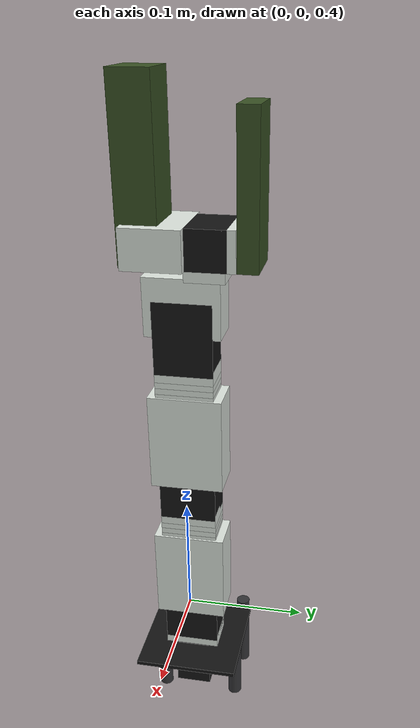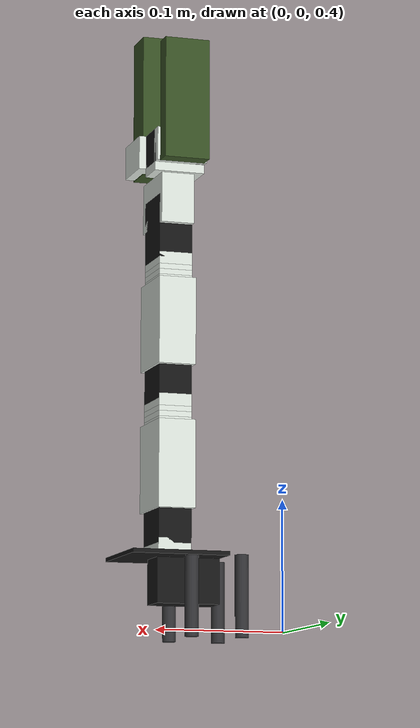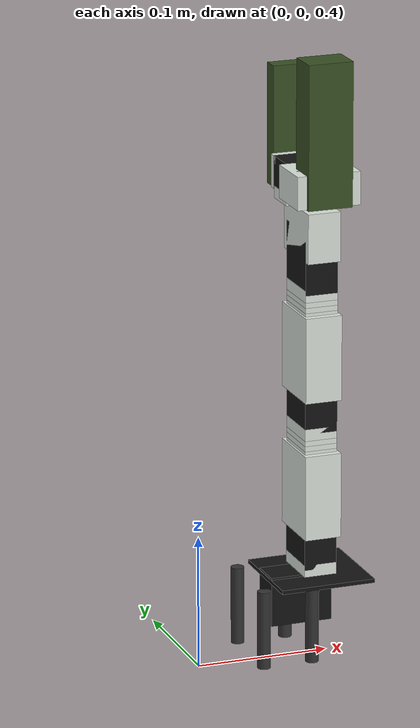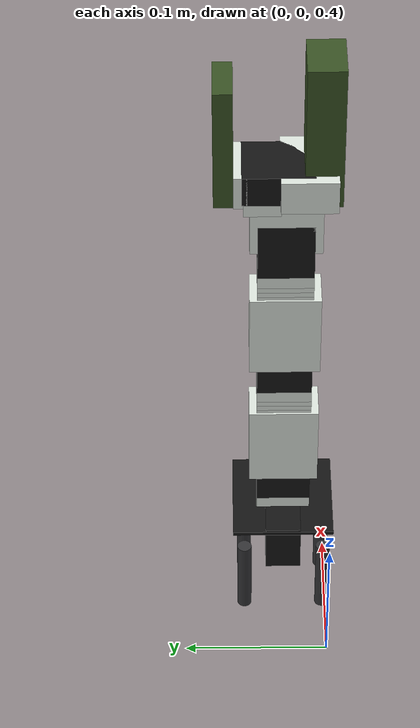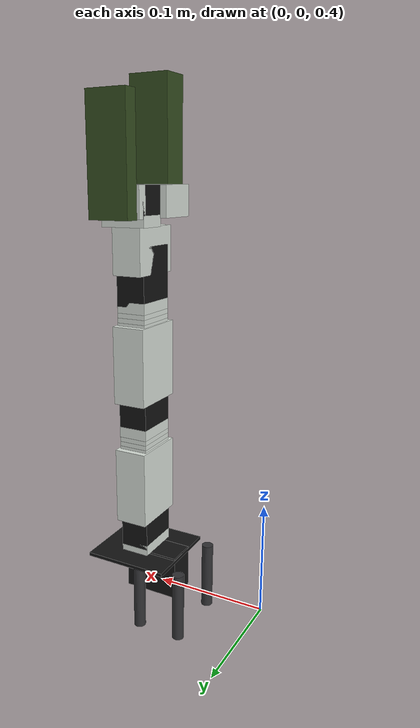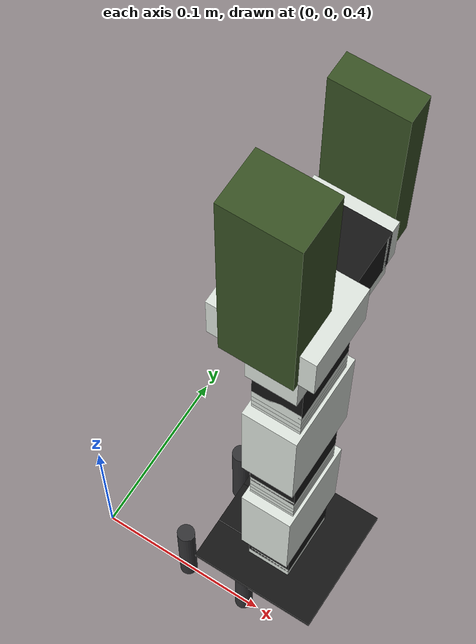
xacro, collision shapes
<?xml version="1.0"?>
<!-- Describe URDF for Turtlebot Arm -->
<robot name="turtlebot_arm" xmlns:xacro="http://ros.org/wiki/xacro">

    <!-- We can configure joints velocity limit and lower/upper limits
         to allow access to different operational areas, e.g. left handed vs. right handed robot -->
    <xacro:property name="joints_vlimit" value="1.571"/>
    <xacro:property name="pan_llimit" value="-2.617"/>
    <xacro:property name="pan_ulimit" value="2.617"/>
    <xacro:property name="shoulder_llimit" value="-2.617"/>
    <xacro:property name="shoulder_ulimit" value="2.617"/>
    <xacro:property name="elbow_llimit" value="-2.617"/>
    <xacro:property name="elbow_ulimit" value="2.617"/>
    <xacro:property name="wrist_llimit" value="-1.745"/>
    <xacro:property name="wrist_ulimit" value="1.745"/>

    <!-- Included URDF Files -->
    <xacro:include filename="$(find turtlebot_arm_description)/urdf/turtlebot_arm.xacro"/>

    <!-- As we don't have here a turtlebot base, add a base_link link as its location reference -->
    <link name="base_link"/>

    <!-- Used for fixing robot to Gazebo 'base_link' -->
  <link name="world"/>

  <joint name="fixed" type="fixed">
    <parent link="world"/>
    <child link="base_link"/>
  </joint>

<!-- copy start: Copied from https://github.com/corot/thorp/blob/master/thorp_description/urdf/thorp_gazebo.urdf.xacro -->

   <!-- Gazebo configuration for arm and cannon servos control -->
  <gazebo>
    <plugin name="gazebo_ros_control" filename="libgazebo_ros_control.so">
      <!-- namespace added because of the inmoov example (https://github.com/MatthewVerbryke/inmoov_ros) -->
      <robotNamespace>/turtlebot_arm</robotNamespace>
      <!-- from: https://groups.google.com/forum/#%21topic/moveit-users/zNRG50tHuuY -->
       <robotSimType>gazebo_ros_control/DefaultRobotHWSim</robotSimType>
    </plugin>
  </gazebo>

  <xacro:macro name="servo_transmission" params="name">
    <transmission name="${name}_trans">
      <type>transmission_interface/SimpleTransmission</type>
      <joint name="${name}_joint">
        <hardwareInterface>hardware_interface/PositionJointInterface</hardwareInterface>
      </joint>
      <actuator name="${name}_motor">
        <hardwareInterface>hardware_interface/PositionJointInterface</hardwareInterface>
        <mechanicalReduction>1</mechanicalReduction>
      </actuator>
    </transmission>
  </xacro:macro>

  <servo_transmission name="arm_shoulder_pan"/>
  <servo_transmission name="arm_shoulder_lift"/>
  <servo_transmission name="arm_elbow_flex"/>
  <servo_transmission name="arm_wrist_flex"/>
  <servo_transmission name="gripper"/>

  <!-- Gazebo configuration for other structural parts -->
  <xacro:macro name="structural_part" params="name color">
    <gazebo reference="${name}_link">
      <material>Gazebo/${color}</material>
      <selfCollide>true</selfCollide>
      <gravity>true</gravity>
    </gazebo>
  </xacro:macro>

  <!-- copy end -->

    <!-- Turtlebot arm macro -->
    <turtlebot_arm parent="base_link" color="White" gripper_color="Green"
                    pincher_gripper="false" turtlebot_gripper="true">
      <!-- Place the "floating" arm at the location it should be if mounted on a turtlebot,
           as pick and place and other demos assume this location -->
      <origin xyz="0.1 0.03 0.435"/>
    </turtlebot_arm>
</robot>

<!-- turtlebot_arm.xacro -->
<!-- Arm description for Turtlebot Arm and PhantomX Pincher arm -->
<robot xmlns:xacro="http://ros.org/wiki/xacro">
  <xacro:include filename="$(find turtlebot_arm_description)/urdf/arm_hardware.xacro"/>

  <material name="White">
    <color rgba="0.87 0.90 0.87 1.0"/>
  </material>
  <material name="Black">
    <color rgba="0.08 0.08 0.08 1.0"/>
  </material>
  <material name="Gray">
    <color rgba="0.2 0.2 0.21 1.0"/>
  </material>
  <material name="Green">
    <color rgba="0.22 0.32 0.14 1.0"/>
  </material>

  <xacro:macro name="turtlebot_arm" params="parent color pincher_gripper turtlebot_gripper gripper_color *origin">
    <link name="arm_base_link"/>
    <joint name="arm_base_joint" type="fixed">
      <xacro:insert_block name="origin"/>
      <parent link="${parent}"/>
      <child link="arm_base_link"/>
    </joint>

  <!-- arm mount-->
  <arm_mount parent="arm_base_link" name="arm_mount" color="Black">
    <origin xyz="0 0 ${AX12_HEIGHT/2-0.00325}" rpy="0 0 0"/>
  </arm_mount>

  <!--arm pole-->
  <xacro:arm_pole parent="arm_mount_link" number="0" x_loc= "-0.01" y_loc= "0.028" z_loc="${-0.06/2}"/>
  <xacro:arm_pole parent="arm_mount_link" number="1" x_loc= "-0.048" y_loc= "0.028" z_loc="${-0.06/2}"/>
  <xacro:arm_pole parent="arm_mount_link" number="2" x_loc= "-0.048" y_loc= "-0.028" z_loc="${-0.06/2}"/>
  <xacro:arm_pole parent="arm_mount_link" number="3" x_loc= "-0.01" y_loc= "-0.028" z_loc="${-0.06/2}"/>

    <!-- fake gripper_link joint gives us a free servo!
         this makes us 5DOF and saves you $44.90
         that's a lot of coin! -->
  <link name="end_effector_link"/>
  <joint name="end_effector_link_joint" type="fixed">
    <origin xyz="0.066 0 -0.007" rpy="-1.571 -0.0 -0.001"/>
    <parent link="gripper_servo_link"/>
    <child link="end_effector_link"/>
  </joint>

  <link name="gripper_link"/>
    <joint name="gripper_link_joint" type="revolute">
      <origin xyz="0 0 0.112" rpy="0 -1.57 0"/>
      <parent link="arm_wrist_flex_link"/>
      <child link="gripper_link"/>
      <limit effort="30" velocity="1" lower="-3.14" upper="3.14"/>
      <axis xyz="1 0 0"/>
    </joint>

    <!-- shoulder pan joint -->
    <xacro:dynamixel_AX12_fixed parent="arm_base_link" name="arm_shoulder_pan_servo">
      <origin xyz="0 0 0" rpy="${M_PI/2} 0 ${M_PI/2}"/>
    </xacro:dynamixel_AX12_fixed>
    <xacro:bioloid_F3_revolute parent="arm_shoulder_pan_servo_link" name="arm_shoulder_pan" color="${color}"
                               vlimit="${joints_vlimit}" llimit="${pan_llimit}" ulimit="${pan_ulimit}">
      <origin xyz="0 ${AX12_WIDTH/2} 0" rpy="${-M_PI/2} ${M_PI/2} ${M_PI}"/>
    </xacro:bioloid_F3_revolute>

    <!-- shoulder lift joint -->
    <xacro:dynamixel_AX12_fixed parent="arm_shoulder_pan_link" name="arm_shoulder_lift_servo">
      <origin xyz="0 0 ${-AX12_HEIGHT-F10_HEIGHT+0.001}" rpy="0 ${M_PI} 0"/>
    </xacro:dynamixel_AX12_fixed>
    <xacro:bioloid_F4_revolute parent="arm_shoulder_lift_servo_link" name="arm_shoulder_lift" color="${color}"
                               vlimit="${joints_vlimit}" llimit="${shoulder_llimit}" ulimit="${shoulder_ulimit}">
      <origin xyz="0 0 0" rpy="0 0 0"/>
    </xacro:bioloid_F4_revolute>
    <xacro:bioloid_F10_fixed parent="arm_shoulder_lift_link" name="arm_shoulder_F10_0" color="${color}">
      <origin xyz="0 0 ${F4_HEIGHT+F10_HEIGHT/2}" rpy="0 0 0"/>
    </xacro:bioloid_F10_fixed>
    <xacro:bioloid_F10_fixed parent="arm_shoulder_F10_0_link" name="arm_shoulder_F10_1" color="${color}">
      <origin xyz="0 0 ${F10_HEIGHT}" rpy="0 0 0"/>
    </xacro:bioloid_F10_fixed>
    <xacro:bioloid_F10_fixed parent="arm_shoulder_F10_1_link" name="arm_shoulder_F10_2" color="${color}">
      <origin xyz="0 0 ${F10_HEIGHT}" rpy="0 0 0"/>
    </xacro:bioloid_F10_fixed>
    <xacro:bioloid_F3_fixed parent="arm_shoulder_F10_2_link" name="arm_shoulder_F3_0" color="${color}">
      <origin xyz="0 0 ${F10_HEIGHT/2}" rpy="0 ${M_PI} 0"/>
    </xacro:bioloid_F3_fixed>

    <!-- elbow joint -->
    <xacro:dynamixel_AX12_fixed parent="arm_shoulder_F3_0_link" name="arm_elbow_flex_servo">
      <origin xyz="0 0 ${-AX12_HEIGHT-F10_HEIGHT+0.001}" rpy="0 ${M_PI} 0"/>
    </xacro:dynamixel_AX12_fixed>
    <xacro:bioloid_F4_revolute parent="arm_elbow_flex_servo_link" name="arm_elbow_flex" color="${color}"
                               vlimit="${joints_vlimit}" llimit="${elbow_llimit}" ulimit="${elbow_ulimit}">
      <origin xyz="0 0 0" rpy="0 0 0"/>
    </xacro:bioloid_F4_revolute>
    <xacro:bioloid_F10_fixed parent="arm_elbow_flex_link" name="arm_elbow_F10_0" color="${color}">
      <origin xyz="0 0 ${F4_HEIGHT+F10_HEIGHT/2}" rpy="0 0 0"/>
    </xacro:bioloid_F10_fixed>
    <xacro:bioloid_F10_fixed parent="arm_elbow_F10_0_link" name="arm_elbow_F10_1" color="${color}">
      <origin xyz="0 0 ${F10_HEIGHT}" rpy="0 0 0"/>
    </xacro:bioloid_F10_fixed>
    <xacro:bioloid_F10_fixed parent="arm_elbow_F10_1_link" name="arm_elbow_F10_2" color="${color}">
      <origin xyz="0 0 ${F10_HEIGHT}" rpy="0 0 0"/>
    </xacro:bioloid_F10_fixed>
    <xacro:bioloid_F3_fixed parent="arm_elbow_F10_2_link" name="arm_elbow_F3_0" color="${color}">
      <origin xyz="0 0 ${F10_HEIGHT/2}" rpy="0 ${M_PI} 0"/>
    </xacro:bioloid_F3_fixed>

    <!-- wrist joint -->
    <xacro:dynamixel_AX12_fixed parent="arm_elbow_F3_0_link" name="arm_wrist_flex_servo">
      <origin xyz="0 0 ${-AX12_HEIGHT-F10_HEIGHT+0.001}" rpy="0 ${M_PI} 0"/>
    </xacro:dynamixel_AX12_fixed>
    <xacro:bioloid_F2_revolute parent="arm_wrist_flex_servo_link" name="arm_wrist_flex" color="${color}"
                               vlimit="${joints_vlimit}" llimit="${wrist_llimit}" ulimit="${wrist_ulimit}">
      <origin xyz="0 0 0" rpy="0 0 0"/>
    </xacro:bioloid_F2_revolute>

  <!-- gripper - Load either Turtlebot gripper or Pincher Gripper -->
  <xacro:if value="${pincher_gripper}">
  <xacro:include filename="$(find turtlebot_arm_description)/urdf/pincher_gripper.xacro"/>
  </xacro:if>
  <xacro:if value="${turtlebot_gripper}">
  <xacro:include filename="$(find turtlebot_arm_description)/urdf/turtlebot_gripper.xacro"/>
  </xacro:if>

  </xacro:macro>

</robot>

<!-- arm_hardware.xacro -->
<!-- Basic URDF components for Turtlebot Arm and PhantomX Pincher Arm-->
<robot xmlns:xacro="http://ros.org/wiki/xacro">
  <xacro:property name="M_PI" value="3.14159"/>
  <xacro:property name="M_SCALE" value="0.001"/>
  <xacro:property name="F10_HEIGHT" value="0.004"/>
  <xacro:property name="F4_HEIGHT" value="0.0525"/>
  <xacro:property name="F3_HEIGHT" value="0.009"/>
  <xacro:property name="AX12_HEIGHT" value="0.0385"/>
  <xacro:property name="AX12_WIDTH" value="0.038"/>
  <xacro:property name="AX12_LENGTH" value="0.050"/>
  <xacro:property name="F2_HEIGHT" value="0.0265"/>

  <!-- Calculates the inertial properties of a bounding box. From
       https://en.wikipedia.org/wiki/List_of_moments_of_inertia#List_of_3D_inertia_tensors-->
  <xacro:macro name="box_inertia" params="length width height mass">
    <inertial>
      <mass value="${mass}"/>
      <origin xyz="0 0 0"/>
      <inertia ixx="${mass/12*(height**2+length**2)}" ixy="0" ixz = "0"
               iyy="${mass/12*(width**2+length**2)}" iyz="0"
               izz="${mass/12*(width**2+height**2)}"/>
    </inertial>
  </xacro:macro>

<!-- arm_mount-->
  <xacro:macro name="arm_mount" params="parent name color *origin">
    <joint name="${name}_joint" type="fixed">
      <xacro:insert_block name="origin"/>
      <parent link="${parent}"/>
      <child link="${name}_link"/>
    </joint>
    <link name="${name}_link">
      <xacro:box_inertia length="0.073" width="0.072" height="0.003" mass="0.01275"/>
      <visual>
        <origin xyz="0 0 0" rpy="0.0 0.0 0.0"/>
        <geometry>
          <mesh filename="package://turtlebot_arm_description/meshes/plate_arm.stl" scale="${M_SCALE} ${M_SCALE} ${M_SCALE}"/>
        </geometry>
        <material name="${color}"/>
      </visual>
      <collision>
        <origin xyz="0 0 0" rpy="0.0 0.0 0.0"/>
        <geometry>
          <box size="0.073 0.072 0.003"/>
        </geometry>
      </collision>
    </link>
    <gazebo reference="${name}_link">
      <material>Gazebo/${color}</material>
      <selfCollide>true</selfCollide>
      <gravity>true</gravity>
    </gazebo>
  </xacro:macro>

<!-- arm pole -->
  <xacro:macro name="arm_pole" params="parent number x_loc y_loc z_loc">
    <joint name="$arm_pole_${number}_joint" type="fixed">
      <origin xyz="${x_loc} ${y_loc} ${z_loc}" rpy="0 0 0"/>
      <parent link="${parent}"/>
      <child link="arm_pole_${number}_link"/>
    </joint>
    <link name="arm_pole_${number}_link">
      <visual>
        <origin xyz="0 0 0" rpy="0 0 0"/>
        <geometry>
          <mesh filename="package://turtlebot_arm_description/meshes/arm_pole.stl" scale="${M_SCALE} ${M_SCALE} ${M_SCALE}"/>
        </geometry>
        <material name="Gray"/>
      </visual>
      <collision>
        <origin xyz="0 0 0" rpy="0 0 0"/>
        <geometry>
          <cylinder length="0.06" radius="0.005"/>
        </geometry>
      </collision>
      <inertial>
        <mass value="0.0103"/>
        <origin xyz="0 0 0"/>
        <inertia ixx="${0.0103/12*(3*0.005**2+0.06**2)}" ixy="0" ixz = "0"
                 iyy="${0.0103/12*(3*0.005**2+0.06**2)}" iyz="0"
                 izz="${0.0103/2*(0.005**2)}"/>
      </inertial>
    </link>
    <gazebo reference="$arm_pole_${number}_link">
      <material>Gazebo/Gray</material>
      <selfCollide>true</selfCollide>
      <gravity>true</gravity>
    </gazebo>
  </xacro:macro>

  <xacro:macro name="finger_active" params="parent name color *origin">
    <joint name="${name}_joint" type="fixed">
      <xacro:insert_block name="origin"/>
      <parent link="${parent}"/>
      <child link="${name}_link"/>
    </joint>

    <link name="${name}_link">
      <xacro:box_inertia length="0.108" width="0.034" height="0.025" mass="0.009"/>

      <visual>
        <origin xyz=" 0 0 0 " rpy="0 0 0"/>
        <geometry>
          <mesh filename="package://turtlebot_arm_description/meshes/finger_active.stl" scale="${M_SCALE} ${M_SCALE} ${M_SCALE}"/>
        </geometry>
        <material name="${color}"/>
      </visual>

      <collision>
        <origin xyz="0.054 0.017 0.0125" rpy="0 0 0"/>
        <geometry>
          <box size="0.108 0.034 0.025"/>
        </geometry>
      </collision>
    </link>

    <gazebo reference="${name}_link">
      <material>Gazebo/${color}</material>
      <selfCollide>true</selfCollide>
      <gravity>true</gravity>
    </gazebo>
  </xacro:macro>

  <xacro:macro name="finger_fixed" params="parent name color *origin">
    <joint name="${name}_joint" type="fixed">
      <xacro:insert_block name="origin"/>
      <parent link="${parent}"/>
      <child link="${name}_link"/>
    </joint>

    <link name="${name}_link">
      <xacro:box_inertia length="0.0901" width="0.034" height="0.013" mass="0.0075"/>

      <visual>
        <origin xyz=" 0 0 0 " rpy="0 0 0"/>
        <geometry>
          <mesh filename="package://turtlebot_arm_description/meshes/finger_static.stl" scale="${M_SCALE} ${M_SCALE} ${M_SCALE}"/>
        </geometry>
        <material name="${color}"/>
      </visual>

      <collision>
        <origin xyz="0.0455 0.017 0.0065" rpy="0 0 0"/>
        <geometry>
          <box size="0.091 0.034 0.013"/>
        </geometry>
      </collision>
    </link>

    <gazebo reference="${name}_link">
      <material>Gazebo/${color}</material>
      <selfCollide>true</selfCollide>
      <gravity>true</gravity>
    </gazebo>
  </xacro:macro>

  <xacro:macro name="dynamixel_AX12_fixed" params="parent name *origin">
    <joint name="${name}_joint" type="fixed">
      <xacro:insert_block name="origin"/>
      <parent link="${parent}"/>
      <child link="${name}_link"/>
    </joint>

    <link name="${name}_link">
      <inertial>
        <mass value="0.055"/>
        <origin xyz="0 0 0"/>
        <inertia ixx="0.000017012" ixy="0.0" ixz="0.0"
                 iyy="0.000013258" iyz="0.0"
                 izz="0.000009483"/>
      </inertial>

      <visual>
        <origin xyz=" 0 0 0 " rpy="0 0 0"/>
        <geometry>
          <mesh filename="package://turtlebot_arm_description/meshes/ax12_box.stl" scale="${M_SCALE} ${M_SCALE} ${M_SCALE}"/>
        </geometry>
        <material name="Black"/>
      </visual>

      <collision>
        <origin xyz="0.0 0.0 -0.01241" rpy="0 0 0"/>
        <geometry>
          <box size="0.025 0.038 0.04762"/>
        </geometry>
      </collision>
    </link>

    <gazebo reference="${name}_link">
      <material>Gazebo/Black</material>
      <selfCollide>true</selfCollide>
      <gravity>true</gravity>
    </gazebo>
  </xacro:macro>

  <xacro:macro name="bioloid_F10_fixed" params="parent name color *origin">
    <joint name="${name}_joint" type="fixed">
      <xacro:insert_block name="origin"/>
      <parent link="${parent}"/>
      <child link="${name}_link"/>
    </joint>

    <link name="${name}_link">
      <xacro:box_inertia length="0.025" width="0.038" height="0.004" mass="0.004"/>

      <visual>
        <origin xyz=" 0 0 0 " rpy="0 0 0"/>
        <geometry>
          <mesh filename="package://turtlebot_arm_description/meshes/F10.stl" scale="${M_SCALE} ${M_SCALE} ${M_SCALE}"/>
        </geometry>
        <material name="${color}"/>
      </visual>

      <collision>
        <origin xyz="0.0 0.0 0.0" rpy="0 0 0"/>
        <geometry>
          <box size="0.025 0.038 0.004"/>
        </geometry>
      </collision>
    </link>

    <gazebo reference="${name}_link">
      <material>Gazebo/${color}</material>
      <selfCollide>true</selfCollide>
      <gravity>true</gravity>
    </gazebo>
  </xacro:macro>

  <xacro:macro name="bioloid_F3_fixed" params="parent name color *origin">
    <joint name="${name}_joint" type="fixed">
      <xacro:insert_block name="origin"/>
      <parent link="${parent}"/>
      <child link="${name}_link"/>
    </joint>

    <link name="${name}_link">
      <xacro:box_inertia length="0.025" width="0.038" height="0.009" mass="0.005"/>

      <visual>
        <origin xyz=" 0 0 0 " rpy="0 0 0"/>
        <geometry>
          <mesh filename="package://turtlebot_arm_description/meshes/F3.stl" scale="${M_SCALE} ${M_SCALE} ${M_SCALE}"/>
        </geometry>
        <material name="${color}"/>
      </visual>

      <collision>
        <origin xyz="0.0 0.0 -0.0045" rpy="0 0 0"/>
        <geometry>
          <box size="0.025 0.038 0.009"/>
        </geometry>
      </collision>
    </link>

    <gazebo reference="${name}_link">
      <material>Gazebo/${color}</material>
      <selfCollide>true</selfCollide>
      <gravity>true</gravity>
    </gazebo>
  </xacro:macro>

  <xacro:macro name="bioloid_F3_revolute" params="parent name color llimit ulimit vlimit *origin">
    <joint name="${name}_joint" type="revolute">
      <xacro:insert_block name="origin"/>
      <axis xyz="0 0 -1"/>
      <limit effort="30" velocity="${vlimit}" lower="${llimit}" upper="${ulimit}"/>
      <dynamics friction="0.13"/>
      <parent link="${parent}"/>
      <child link="${name}_link"/>
    </joint>

    <link name="${name}_link">
      <xacro:box_inertia length="0.025" width="0.038" height="0.009" mass="0.008"/>

      <visual>
        <origin xyz=" 0 0 0 " rpy="0 0 0"/>
        <geometry>
          <mesh filename="package://turtlebot_arm_description/meshes/F3.stl" scale="${M_SCALE} ${M_SCALE} ${M_SCALE}"/>
        </geometry>
        <material name="${color}"/>
      </visual>

      <collision>
        <origin xyz="0.0 0.0 -0.0045" rpy="0 0 0"/>
        <geometry>
          <box size="0.025 0.038 0.009"/>
        </geometry>
      </collision>
    </link>

    <gazebo reference="${name}_link">
      <material>Gazebo/${color}</material>
      <selfCollide>true</selfCollide>
      <gravity>true</gravity>
    </gazebo>
  </xacro:macro>

  <xacro:macro name="bioloid_F2_revolute" params="parent name color llimit ulimit vlimit *origin">
    <joint name="${name}_joint" type="revolute">
      <xacro:insert_block name="origin"/>
      <axis xyz="0 1 0"/>
      <limit effort="30" velocity="${vlimit}" lower="${llimit}" upper="${ulimit}"/>
      <dynamics friction="0.13"/>
      <parent link="${parent}"/>
      <child link="${name}_link"/>
    </joint>

    <link name="${name}_link">
      <xacro:box_inertia length="0.025" width="0.0485" height="0.0375" mass="0.010"/>

      <visual>
        <origin xyz=" 0 0 0 " rpy="0 0 0"/>
        <geometry>
          <mesh filename="package://turtlebot_arm_description/meshes/F2.stl" scale="${M_SCALE} ${M_SCALE} ${M_SCALE}"/>
        </geometry>
        <material name="${color}"/>
      </visual>

      <collision>
        <origin xyz="0.0 0.0 0.00775" rpy="0 0 0"/>
        <geometry>
          <box size="0.025 0.0485 0.0375"/>
        </geometry>
      </collision>
    </link>

    <gazebo reference="${name}_link">
      <material>Gazebo/${color}</material>
      <selfCollide>true</selfCollide>
      <gravity>true</gravity>
    </gazebo>
  </xacro:macro>

  <xacro:macro name="bioloid_F4_revolute" params="parent name color llimit ulimit vlimit *origin">
    <joint name="${name}_joint" type="revolute">
      <xacro:insert_block name="origin"/>
      <axis xyz="0 1 0"/>
      <limit effort="30" velocity="${vlimit}" lower="${llimit}" upper="${ulimit}"/>
      <dynamics friction="0.13"/>
      <parent link="${parent}"/>
      <child link="${name}_link"/>
    </joint>

    <link name="${name}_link">
      <xacro:box_inertia length="0.028" width="0.0485" height="0.065" mass="0.016"/>

      <visual>
        <origin xyz=" 0 0 0 " rpy="0 0 0"/>
        <geometry>
          <mesh filename="package://turtlebot_arm_description/meshes/F4.stl" scale="${M_SCALE} ${M_SCALE} ${M_SCALE}"/>
        </geometry>
        <material name="${color}"/>
      </visual>

      <collision>
        <origin xyz="0.0 0.0 0.0215" rpy="0 0 0"/>
        <geometry>
          <box size="0.028 0.0485 0.065"/>
        </geometry>
      </collision>
    </link>

    <gazebo reference="${name}_link">
      <material>Gazebo/${color}</material>
      <selfCollide>true</selfCollide>
      <gravity>true</gravity>
    </gazebo>
  </xacro:macro>

  <xacro:macro name="gripper_finger_base" params="parent name color *origin">
    <joint name="${name}_joint" type="fixed">
      <xacro:insert_block name="origin"/>
      <parent link="${parent}"/>
      <child link="${name}_link"/>
    </joint>

    <link name="${name}_link">
      <xacro:box_inertia length="0.002" width="0.040" height="0.075" mass="0.00001"/>
      <visual>
        <origin xyz="0.016 0 -.015 " rpy="${M_PI} ${-M_PI/2} ${M_PI/2}"/>
        <geometry>
          <mesh filename="package://turtlebot_arm_description/meshes/pincher_finger_base.stl" scale=".01 .01 .01"/>
        </geometry>
        <material name="${color}"/>
      </visual>

      <collision>
        <origin xyz="0.016 0.0 -0.015" rpy="0 0 0"/>
        <geometry>
          <box size="0.002 0.040 0.075"/>
        </geometry>
      </collision>
    </link >

    <gazebo reference="${name}_link">
      <material>Gazebo/${color}</material>
      <selfCollide>true</selfCollide>
      <gravity>true</gravity>
    </gazebo>
  </xacro:macro>

    <xacro:macro name="pincher_gripper" params="name color *origin">
      <link name="${name}_link">
      <xacro:box_inertia length="0.036" width="0.028" height="0.004" mass="0.00001"/>
      <visual>
        <xacro:insert_block name="origin"/>
        <geometry>
          <mesh filename="package://turtlebot_arm_description/meshes/pincher_finger.stl" scale=".01 .01 .01"/>
        </geometry>
        <material name="${color}"/>
      </visual>
      <collision>
        <xacro:insert_block name="origin"/>
        <geometry>
          <box size="0.023 0.028 0.038"/>
        </geometry>
      </collision>
    </link>

    <gazebo reference="${name}_link">
      <material>Gazebo/${color}</material>
      <selfCollide>true</selfCollide>
      <gravity>true</gravity>
    </gazebo>
  </xacro:macro>
</robot>

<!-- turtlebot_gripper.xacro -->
<!-- Turtlebot Arm gripper URDF-->
<robot xmlns:xacro="http://ros.org/wiki/xacro">
    <xacro:bioloid_F3_fixed parent="arm_wrist_flex_link" name="arm_wrist_F3_0" color="${color}">
      <origin xyz="0 0.016 ${F2_HEIGHT}" rpy="0 ${M_PI} ${-M_PI/2}"/>
    </xacro:bioloid_F3_fixed>
    <!-- gripper joint -->
    <xacro:dynamixel_AX12_fixed parent="arm_wrist_F3_0_link" name="gripper_servo">
      <origin xyz="-0.02275 0 ${-AX12_WIDTH/2}" rpy="${M_PI} ${M_PI/2} 0"/>
    </xacro:dynamixel_AX12_fixed>

    <!-- finger 1 -->
    <joint name="gripper_joint" type="revolute">
      <origin xyz="0 0 0" rpy="0 0 0"/>
      <axis xyz="0 1 0"/>
      <limit effort="30" velocity="0.785" lower="-0.40" upper="0.46"/>
      <parent link="gripper_servo_link"/>
      <child link="gripper_active_link"/>
    </joint>
    <link name="gripper_active_link">
      <inertial>
        <mass value="0.010"/>
        <origin xyz="0 0 0"/>
        <inertia ixx="0.000001" ixy="0.0" ixz="0.0"
                 iyy="0.000001" iyz="0.0"
                 izz="0.000001"/>
      </inertial>
      <visual>
        <origin xyz=" 0 0 0 " rpy="0 0 0"/>
        <geometry>
          <mesh filename="package://turtlebot_arm_description/meshes/F2.stl" scale="${M_SCALE} ${M_SCALE} ${M_SCALE}"/>
        </geometry>
        <material name="${color}"/>
      </visual>
      <collision>
        <origin xyz="0.0 0.0 0.00775" rpy="0 0 0"/>
        <geometry>
          <box size="0.025 0.0485 0.0375"/>
        </geometry>
      </collision>
    </link>
    <xacro:finger_active parent="gripper_active_link" name="gripper_active_finger" color="${gripper_color}">
      <origin xyz="-0.013 0.017 ${F2_HEIGHT+0.003}" rpy="${M_PI} 0 0"/>
    </xacro:finger_active>

    <!-- finger 2 -->
    <xacro:bioloid_F3_fixed parent="gripper_servo_link" name="gripper_static" color="${color}">
      <origin xyz="0 0 ${-AX12_HEIGHT-F10_HEIGHT+0.001}" rpy="0 ${M_PI} 0"/>
    </xacro:bioloid_F3_fixed>
    <xacro:finger_fixed parent="gripper_static_link" name="gripper_static_finger" color="${gripper_color}">
      <origin xyz="0.013 0.017 0" rpy="0 0 ${M_PI}"/>
    </xacro:finger_fixed>
</robot>
